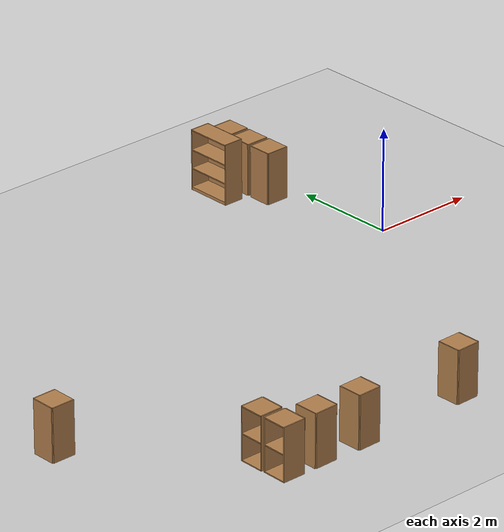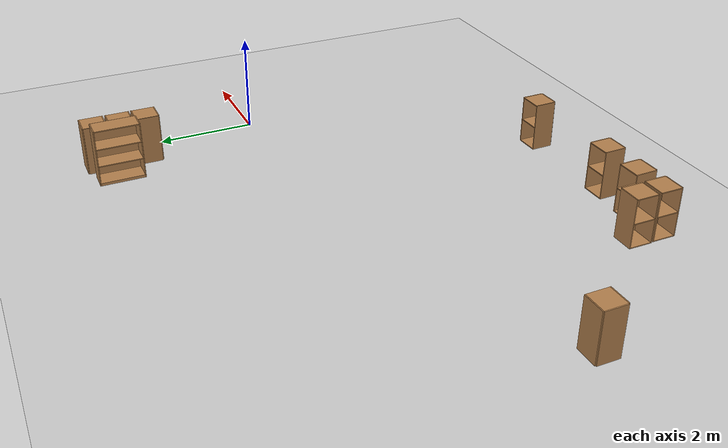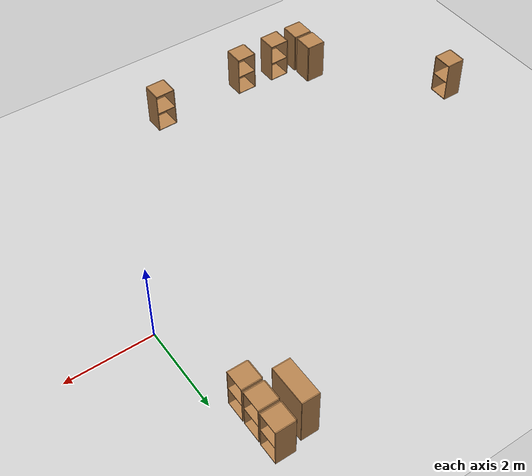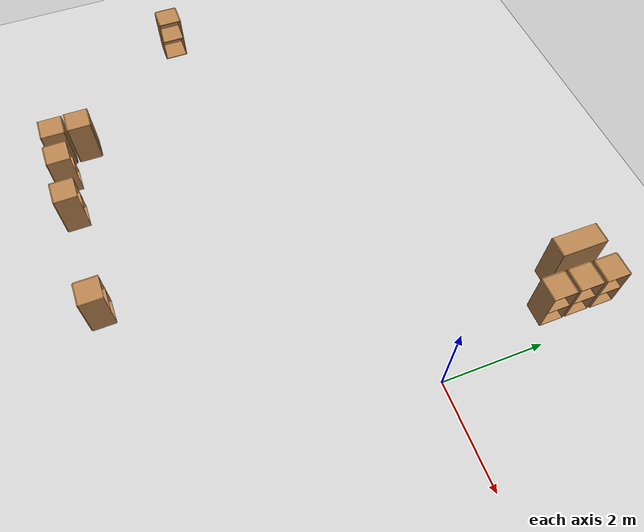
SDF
<sdf version="1.6">
 <world name="default">
  <model name="ground_plane">
   <static>1</static>
   <link name="link">
    <collision name="collision">
     <geometry><plane><normal>0 0 1</normal><size>100 100</size></plane></geometry>
     <surface>
      <contact><collide_bitmask>65535</collide_bitmask></contact>
      <friction><ode><mu>100</mu><mu2>50</mu2></ode></friction>
     </surface>
    </collision>
    <visual name="visual">
     <cast_shadows>0</cast_shadows>
     <geometry><plane><normal>0 0 1</normal><size>100 100</size></plane></geometry>
     <material>
      <script><uri>file://media/materials/scripts/gazebo.material</uri><name>Gazebo/Grey</name></script>
     </material>
    </visual>
   </link>
  </model>
  <model name="cabinet_clone">
   <static>1</static>
   <link name="cabinet_bottom_plate">
    <inertial>
     <pose>0 0 -1 0 -0 0</pose>
     <inertia><ixx>2.05</ixx><ixy>0</ixy><ixz>0</ixz><iyy>2.05</iyy><iyz>0</iyz><izz>2.05</izz></inertia>
     <mass>25</mass>
    </inertial>
    <collision name="cabinet_bottom_plate_geom">
     <pose>0 0 0.01 0 -0 0</pose>
     <geometry><box><size>0.45 0.45 0.02</size></box></geometry>
    </collision>
    <visual name="cabinet_bottom_plate_geom_visual">
     <pose>0 0 0.01 0 -0 0</pose>
     <geometry><box><size>0.45 0.45 0.02</size></box></geometry>
     <material>
      <script><uri>file://media/materials/scripts/gazebo.material</uri><name>Gazebo/Wood</name></script>
     </material>
    </visual>
    <collision name="cabinet_bottom_plate_geom_cabinet_back_plate">
     <pose>0.235 0 0.51 0 -0 0</pose>
     <geometry><box><size>0.02 0.45 1.02</size></box></geometry>
    </collision>
    <visual name="cabinet_bottom_plate_geom_cabinet_back_plate_visual">
     <pose>0.235 0 0.51 0 -0 0</pose>
     <geometry><box><size>0.02 0.45 1.02</size></box></geometry>
     <material>
      <script><uri>file://media/materials/scripts/gazebo.material</uri><name>Gazebo/Wood</name></script>
     </material>
    </visual>
    <collision name="cabinet_bottom_plate_geom_cabinet_left_plate">
     <pose>0 0.235 0.51 0 -0 0</pose>
     <geometry><box><size>0.45 0.02 1.02</size></box></geometry>
    </collision>
    <visual name="cabinet_bottom_plate_geom_cabinet_left_plate_visual">
     <pose>0 0.235 0.51 0 -0 0</pose>
     <geometry><box><size>0.45 0.02 1.02</size></box></geometry>
     <material>
      <script><uri>file://media/materials/scripts/gazebo.material</uri><name>Gazebo/Wood</name></script>
     </material>
    </visual>
    <collision name="cabinet_bottom_plate_geom_cabinet_middle_plate">
     <pose>0 0 0.51 0 -0 0</pose>
     <geometry><box><size>0.45 0.45 0.02</size></box></geometry>
    </collision>
    <visual name="cabinet_bottom_plate_geom_cabinet_middle_plate_visual">
     <pose>0 0 0.51 0 -0 0</pose>
     <geometry><box><size>0.45 0.45 0.02</size></box></geometry>
     <material>
      <script><uri>file://media/materials/scripts/gazebo.material</uri><name>Gazebo/Wood</name></script>
     </material>
    </visual>
    <collision name="cabinet_bottom_plate_geom_cabinet_right_plate">
     <pose>0 -0.235 0.51 0 -0 0</pose>
     <geometry><box><size>0.45 0.02 1.02</size></box></geometry>
    </collision>
    <visual name="cabinet_bottom_plate_geom_cabinet_right_plate_visual">
     <pose>0 -0.235 0.51 0 -0 0</pose>
     <geometry><box><size>0.45 0.02 1.02</size></box></geometry>
     <material>
      <script><uri>file://media/materials/scripts/gazebo.material</uri><name>Gazebo/Wood</name></script>
     </material>
    </visual>
    <collision name="cabinet_bottom_plate_geom_cabinet_top_plate">
     <pose>0 0 1.01 0 -0 0</pose>
     <geometry><box><size>0.45 0.45 0.02</size></box></geometry>
    </collision>
    <visual name="cabinet_bottom_plate_geom_cabinet_top_plate_visual">
     <pose>0 0 1.01 0 -0 0</pose>
     <geometry><box><size>0.45 0.45 0.02</size></box></geometry>
     <material>
      <script><uri>file://media/materials/scripts/gazebo.material</uri><name>Gazebo/Wood</name></script>
     </material>
    </visual>
   </link>
   <pose>-0.559027 2.39605 0 0 -0 3.1415</pose>
  </model>
  <model name="cabinet_clone_0">
   <static>1</static>
   <link name="cabinet_bottom_plate">
    <inertial>
     <pose>0 0 -1 0 -0 0</pose>
     <inertia><ixx>2.05</ixx><ixy>0</ixy><ixz>0</ixz><iyy>2.05</iyy><iyz>0</iyz><izz>2.05</izz></inertia>
     <mass>25</mass>
    </inertial>
    <collision name="cabinet_bottom_plate_geom">
     <pose>0 0 0.01 0 -0 0</pose>
     <geometry><box><size>0.45 0.45 0.02</size></box></geometry>
    </collision>
    <visual name="cabinet_bottom_plate_geom_visual">
     <pose>0 0 0.01 0 -0 0</pose>
     <geometry><box><size>0.45 0.45 0.02</size></box></geometry>
     <material>
      <script><uri>file://media/materials/scripts/gazebo.material</uri><name>Gazebo/Wood</name></script>
     </material>
    </visual>
    <collision name="cabinet_bottom_plate_geom_cabinet_back_plate">
     <pose>0.235 0 0.51 0 -0 0</pose>
     <geometry><box><size>0.02 0.45 1.02</size></box></geometry>
    </collision>
    <visual name="cabinet_bottom_plate_geom_cabinet_back_plate_visual">
     <pose>0.235 0 0.51 0 -0 0</pose>
     <geometry><box><size>0.02 0.45 1.02</size></box></geometry>
     <material>
      <script><uri>file://media/materials/scripts/gazebo.material</uri><name>Gazebo/Wood</name></script>
     </material>
    </visual>
    <collision name="cabinet_bottom_plate_geom_cabinet_left_plate">
     <pose>0 0.235 0.51 0 -0 0</pose>
     <geometry><box><size>0.45 0.02 1.02</size></box></geometry>
    </collision>
    <visual name="cabinet_bottom_plate_geom_cabinet_left_plate_visual">
     <pose>0 0.235 0.51 0 -0 0</pose>
     <geometry><box><size>0.45 0.02 1.02</size></box></geometry>
     <material>
      <script><uri>file://media/materials/scripts/gazebo.material</uri><name>Gazebo/Wood</name></script>
     </material>
    </visual>
    <collision name="cabinet_bottom_plate_geom_cabinet_middle_plate">
     <pose>0 0 0.51 0 -0 0</pose>
     <geometry><box><size>0.45 0.45 0.02</size></box></geometry>
    </collision>
    <visual name="cabinet_bottom_plate_geom_cabinet_middle_plate_visual">
     <pose>0 0 0.51 0 -0 0</pose>
     <geometry><box><size>0.45 0.45 0.02</size></box></geometry>
     <material>
      <script><uri>file://media/materials/scripts/gazebo.material</uri><name>Gazebo/Wood</name></script>
     </material>
    </visual>
    <collision name="cabinet_bottom_plate_geom_cabinet_right_plate">
     <pose>0 -0.235 0.51 0 -0 0</pose>
     <geometry><box><size>0.45 0.02 1.02</size></box></geometry>
    </collision>
    <visual name="cabinet_bottom_plate_geom_cabinet_right_plate_visual">
     <pose>0 -0.235 0.51 0 -0 0</pose>
     <geometry><box><size>0.45 0.02 1.02</size></box></geometry>
     <material>
      <script><uri>file://media/materials/scripts/gazebo.material</uri><name>Gazebo/Wood</name></script>
     </material>
    </visual>
    <collision name="cabinet_bottom_plate_geom_cabinet_top_plate">
     <pose>0 0 1.01 0 -0 0</pose>
     <geometry><box><size>0.45 0.45 0.02</size></box></geometry>
    </collision>
    <visual name="cabinet_bottom_plate_geom_cabinet_top_plate_visual">
     <pose>0 0 1.01 0 -0 0</pose>
     <geometry><box><size>0.45 0.45 0.02</size></box></geometry>
     <material>
      <script><uri>file://media/materials/scripts/gazebo.material</uri><name>Gazebo/Wood</name></script>
     </material>
    </visual>
   </link>
   <pose>-0.558922 2.92629 0 0 -0 3.1415</pose>
  </model>
  <model name="cabinet_clone_1">
   <static>1</static>
   <link name="cabinet_bottom_plate">
    <inertial>
     <pose>0 0 -1 0 -0 0</pose>
     <inertia><ixx>2.05</ixx><ixy>0</ixy><ixz>0</ixz><iyy>2.05</iyy><iyz>0</iyz><izz>2.05</izz></inertia>
     <mass>25</mass>
    </inertial>
    <collision name="cabinet_bottom_plate_geom">
     <pose>0 0 0.01 0 -0 0</pose>
     <geometry><box><size>0.45 0.45 0.02</size></box></geometry>
    </collision>
    <visual name="cabinet_bottom_plate_geom_visual">
     <pose>0 0 0.01 0 -0 0</pose>
     <geometry><box><size>0.45 0.45 0.02</size></box></geometry>
     <material>
      <script><uri>file://media/materials/scripts/gazebo.material</uri><name>Gazebo/Wood</name></script>
     </material>
    </visual>
    <collision name="cabinet_bottom_plate_geom_cabinet_back_plate">
     <pose>0.235 0 0.51 0 -0 0</pose>
     <geometry><box><size>0.02 0.45 1.02</size></box></geometry>
    </collision>
    <visual name="cabinet_bottom_plate_geom_cabinet_back_plate_visual">
     <pose>0.235 0 0.51 0 -0 0</pose>
     <geometry><box><size>0.02 0.45 1.02</size></box></geometry>
     <material>
      <script><uri>file://media/materials/scripts/gazebo.material</uri><name>Gazebo/Wood</name></script>
     </material>
    </visual>
    <collision name="cabinet_bottom_plate_geom_cabinet_left_plate">
     <pose>0 0.235 0.51 0 -0 0</pose>
     <geometry><box><size>0.45 0.02 1.02</size></box></geometry>
    </collision>
    <visual name="cabinet_bottom_plate_geom_cabinet_left_plate_visual">
     <pose>0 0.235 0.51 0 -0 0</pose>
     <geometry><box><size>0.45 0.02 1.02</size></box></geometry>
     <material>
      <script><uri>file://media/materials/scripts/gazebo.material</uri><name>Gazebo/Wood</name></script>
     </material>
    </visual>
    <collision name="cabinet_bottom_plate_geom_cabinet_middle_plate">
     <pose>0 0 0.51 0 -0 0</pose>
     <geometry><box><size>0.45 0.45 0.02</size></box></geometry>
    </collision>
    <visual name="cabinet_bottom_plate_geom_cabinet_middle_plate_visual">
     <pose>0 0 0.51 0 -0 0</pose>
     <geometry><box><size>0.45 0.45 0.02</size></box></geometry>
     <material>
      <script><uri>file://media/materials/scripts/gazebo.material</uri><name>Gazebo/Wood</name></script>
     </material>
    </visual>
    <collision name="cabinet_bottom_plate_geom_cabinet_right_plate">
     <pose>0 -0.235 0.51 0 -0 0</pose>
     <geometry><box><size>0.45 0.02 1.02</size></box></geometry>
    </collision>
    <visual name="cabinet_bottom_plate_geom_cabinet_right_plate_visual">
     <pose>0 -0.235 0.51 0 -0 0</pose>
     <geometry><box><size>0.45 0.02 1.02</size></box></geometry>
     <material>
      <script><uri>file://media/materials/scripts/gazebo.material</uri><name>Gazebo/Wood</name></script>
     </material>
    </visual>
    <collision name="cabinet_bottom_plate_geom_cabinet_top_plate">
     <pose>0 0 1.01 0 -0 0</pose>
     <geometry><box><size>0.45 0.45 0.02</size></box></geometry>
    </collision>
    <visual name="cabinet_bottom_plate_geom_cabinet_top_plate_visual">
     <pose>0 0 1.01 0 -0 0</pose>
     <geometry><box><size>0.45 0.45 0.02</size></box></geometry>
     <material>
      <script><uri>file://media/materials/scripts/gazebo.material</uri><name>Gazebo/Wood</name></script>
     </material>
    </visual>
   </link>
   <pose>-0.550061 3.45827 0 0 -0 3.1415</pose>
  </model>
  <model name="bookshelf_0">
   <static>1</static>
   <link name="link">
    <inertial><mass>1</mass></inertial>
    <collision name="back">
     <pose>0 0.005 0.6 0 -0 0</pose>
     <geometry><box><size>0.9 0.01 1.2</size></box></geometry>
    </collision>
    <visual name="visual1">
     <pose>0 0.005 0.6 0 -0 0</pose>
     <geometry><box><size>0.9 0.01 1.2</size></box></geometry>
     <material>
      <script><uri>file://media/materials/scripts/gazebo.material</uri><name>Gazebo/Wood</name></script>
     </material>
    </visual>
    <collision name="left_side">
     <pose>0.45 -0.195 0.6 0 -0 0</pose>
     <geometry><box><size>0.02 0.4 1.2</size></box></geometry>
    </collision>
    <visual name="visual2">
     <pose>0.45 -0.195 0.6 0 -0 0</pose>
     <geometry><box><size>0.02 0.4 1.2</size></box></geometry>
     <material>
      <script><uri>file://media/materials/scripts/gazebo.material</uri><name>Gazebo/Wood</name></script>
     </material>
    </visual>
    <collision name="right_side">
     <pose>-0.45 -0.195 0.6 0 -0 0</pose>
     <geometry><box><size>0.02 0.4 1.2</size></box></geometry>
    </collision>
    <visual name="visual3">
     <pose>-0.45 -0.195 0.6 0 -0 0</pose>
     <geometry><box><size>0.02 0.4 1.2</size></box></geometry>
     <material>
      <script><uri>file://media/materials/scripts/gazebo.material</uri><name>Gazebo/Wood</name></script>
     </material>
    </visual>
    <collision name="bottom">
     <pose>0 -0.195 0.03 0 -0 0</pose>
     <geometry><box><size>0.88 0.4 0.06</size></box></geometry>
    </collision>
    <visual name="visual4">
     <pose>0 -0.195 0.03 0 -0 0</pose>
     <geometry><box><size>0.88 0.4 0.06</size></box></geometry>
     <material>
      <script><uri>file://media/materials/scripts/gazebo.material</uri><name>Gazebo/Wood</name></script>
     </material>
    </visual>
    <collision name="top">
     <pose>0 -0.195 1.19 0 -0 0</pose>
     <geometry><box><size>0.88 0.4 0.02</size></box></geometry>
    </collision>
    <visual name="visual5">
     <pose>0 -0.195 1.19 0 -0 0</pose>
     <geometry><box><size>0.88 0.4 0.02</size></box></geometry>
     <material>
      <script><uri>file://media/materials/scripts/gazebo.material</uri><name>Gazebo/Wood</name></script>
     </material>
    </visual>
    <collision name="low_shelf">
     <pose>0 -0.195 0.43 0 -0 0</pose>
     <geometry><box><size>0.88 0.4 0.02</size></box></geometry>
    </collision>
    <visual name="visual6">
     <pose>0 -0.195 0.43 0 -0 0</pose>
     <geometry><box><size>0.88 0.4 0.02</size></box></geometry>
     <material>
      <script><uri>file://media/materials/scripts/gazebo.material</uri><name>Gazebo/Wood</name></script>
     </material>
    </visual>
    <collision name="high_shelf">
     <pose>0 -0.195 0.8 0 -0 0</pose>
     <geometry><box><size>0.88 0.4 0.02</size></box></geometry>
    </collision>
    <visual name="visual7">
     <pose>0 -0.195 0.8 0 -0 0</pose>
     <geometry><box><size>0.88 0.4 0.02</size></box></geometry>
     <material>
      <script><uri>file://media/materials/scripts/gazebo.material</uri><name>Gazebo/Wood</name></script>
     </material>
    </visual>
   </link>
   <pose>-0.982099 3.12059 0 0 0 -1.5708</pose>
  </model>
  <model name="cabinet_clone_clone">
   <static>1</static>
   <link name="cabinet_bottom_plate">
    <inertial>
     <pose>0 0 -1 0 -0 0</pose>
     <inertia><ixx>2.05</ixx><ixy>0</ixy><ixz>0</ixz><iyy>2.05</iyy><iyz>0</iyz><izz>2.05</izz></inertia>
     <mass>25</mass>
    </inertial>
    <collision name="cabinet_bottom_plate_geom">
     <pose>0 0 0.01 0 -0 0</pose>
     <geometry><box><size>0.45 0.45 0.02</size></box></geometry>
    </collision>
    <visual name="cabinet_bottom_plate_geom_visual">
     <pose>0 0 0.01 0 -0 0</pose>
     <geometry><box><size>0.45 0.45 0.02</size></box></geometry>
     <material>
      <script><uri>file://media/materials/scripts/gazebo.material</uri><name>Gazebo/Wood</name></script>
     </material>
    </visual>
    <collision name="cabinet_bottom_plate_geom_cabinet_back_plate">
     <pose>0.235 0 0.51 0 -0 0</pose>
     <geometry><box><size>0.02 0.45 1.02</size></box></geometry>
    </collision>
    <visual name="cabinet_bottom_plate_geom_cabinet_back_plate_visual">
     <pose>0.235 0 0.51 0 -0 0</pose>
     <geometry><box><size>0.02 0.45 1.02</size></box></geometry>
     <material>
      <script><uri>file://media/materials/scripts/gazebo.material</uri><name>Gazebo/Wood</name></script>
     </material>
    </visual>
    <collision name="cabinet_bottom_plate_geom_cabinet_left_plate">
     <pose>0 0.235 0.51 0 -0 0</pose>
     <geometry><box><size>0.45 0.02 1.02</size></box></geometry>
    </collision>
    <visual name="cabinet_bottom_plate_geom_cabinet_left_plate_visual">
     <pose>0 0.235 0.51 0 -0 0</pose>
     <geometry><box><size>0.45 0.02 1.02</size></box></geometry>
     <material>
      <script><uri>file://media/materials/scripts/gazebo.material</uri><name>Gazebo/Wood</name></script>
     </material>
    </visual>
    <collision name="cabinet_bottom_plate_geom_cabinet_middle_plate">
     <pose>0 0 0.51 0 -0 0</pose>
     <geometry><box><size>0.45 0.45 0.02</size></box></geometry>
    </collision>
    <visual name="cabinet_bottom_plate_geom_cabinet_middle_plate_visual">
     <pose>0 0 0.51 0 -0 0</pose>
     <geometry><box><size>0.45 0.45 0.02</size></box></geometry>
     <material>
      <script><uri>file://media/materials/scripts/gazebo.material</uri><name>Gazebo/Wood</name></script>
     </material>
    </visual>
    <collision name="cabinet_bottom_plate_geom_cabinet_right_plate">
     <pose>0 -0.235 0.51 0 -0 0</pose>
     <geometry><box><size>0.45 0.02 1.02</size></box></geometry>
    </collision>
    <visual name="cabinet_bottom_plate_geom_cabinet_right_plate_visual">
     <pose>0 -0.235 0.51 0 -0 0</pose>
     <geometry><box><size>0.45 0.02 1.02</size></box></geometry>
     <material>
      <script><uri>file://media/materials/scripts/gazebo.material</uri><name>Gazebo/Wood</name></script>
     </material>
    </visual>
    <collision name="cabinet_bottom_plate_geom_cabinet_top_plate">
     <pose>0 0 1.01 0 -0 0</pose>
     <geometry><box><size>0.45 0.45 0.02</size></box></geometry>
    </collision>
    <visual name="cabinet_bottom_plate_geom_cabinet_top_plate_visual">
     <pose>0 0 1.01 0 -0 0</pose>
     <geometry><box><size>0.45 0.45 0.02</size></box></geometry>
     <material>
      <script><uri>file://media/materials/scripts/gazebo.material</uri><name>Gazebo/Wood</name></script>
     </material>
    </visual>
   </link>
   <pose>-9.62196 -2.30495 0 0 -0 3.1415</pose>
  </model>
  <model name="cabinet_clone_clone_0">
   <static>1</static>
   <link name="cabinet_bottom_plate">
    <inertial>
     <pose>0 0 -1 0 -0 0</pose>
     <inertia><ixx>2.05</ixx><ixy>0</ixy><ixz>0</ixz><iyy>2.05</iyy><iyz>0</iyz><izz>2.05</izz></inertia>
     <mass>25</mass>
    </inertial>
    <collision name="cabinet_bottom_plate_geom">
     <pose>0 0 0.01 0 -0 0</pose>
     <geometry><box><size>0.45 0.45 0.02</size></box></geometry>
    </collision>
    <visual name="cabinet_bottom_plate_geom_visual">
     <pose>0 0 0.01 0 -0 0</pose>
     <geometry><box><size>0.45 0.45 0.02</size></box></geometry>
     <material>
      <script><uri>file://media/materials/scripts/gazebo.material</uri><name>Gazebo/Wood</name></script>
     </material>
    </visual>
    <collision name="cabinet_bottom_plate_geom_cabinet_back_plate">
     <pose>0.235 0 0.51 0 -0 0</pose>
     <geometry><box><size>0.02 0.45 1.02</size></box></geometry>
    </collision>
    <visual name="cabinet_bottom_plate_geom_cabinet_back_plate_visual">
     <pose>0.235 0 0.51 0 -0 0</pose>
     <geometry><box><size>0.02 0.45 1.02</size></box></geometry>
     <material>
      <script><uri>file://media/materials/scripts/gazebo.material</uri><name>Gazebo/Wood</name></script>
     </material>
    </visual>
    <collision name="cabinet_bottom_plate_geom_cabinet_left_plate">
     <pose>0 0.235 0.51 0 -0 0</pose>
     <geometry><box><size>0.45 0.02 1.02</size></box></geometry>
    </collision>
    <visual name="cabinet_bottom_plate_geom_cabinet_left_plate_visual">
     <pose>0 0.235 0.51 0 -0 0</pose>
     <geometry><box><size>0.45 0.02 1.02</size></box></geometry>
     <material>
      <script><uri>file://media/materials/scripts/gazebo.material</uri><name>Gazebo/Wood</name></script>
     </material>
    </visual>
    <collision name="cabinet_bottom_plate_geom_cabinet_middle_plate">
     <pose>0 0 0.51 0 -0 0</pose>
     <geometry><box><size>0.45 0.45 0.02</size></box></geometry>
    </collision>
    <visual name="cabinet_bottom_plate_geom_cabinet_middle_plate_visual">
     <pose>0 0 0.51 0 -0 0</pose>
     <geometry><box><size>0.45 0.45 0.02</size></box></geometry>
     <material>
      <script><uri>file://media/materials/scripts/gazebo.material</uri><name>Gazebo/Wood</name></script>
     </material>
    </visual>
    <collision name="cabinet_bottom_plate_geom_cabinet_right_plate">
     <pose>0 -0.235 0.51 0 -0 0</pose>
     <geometry><box><size>0.45 0.02 1.02</size></box></geometry>
    </collision>
    <visual name="cabinet_bottom_plate_geom_cabinet_right_plate_visual">
     <pose>0 -0.235 0.51 0 -0 0</pose>
     <geometry><box><size>0.45 0.02 1.02</size></box></geometry>
     <material>
      <script><uri>file://media/materials/scripts/gazebo.material</uri><name>Gazebo/Wood</name></script>
     </material>
    </visual>
    <collision name="cabinet_bottom_plate_geom_cabinet_top_plate">
     <pose>0 0 1.01 0 -0 0</pose>
     <geometry><box><size>0.45 0.45 0.02</size></box></geometry>
    </collision>
    <visual name="cabinet_bottom_plate_geom_cabinet_top_plate_visual">
     <pose>0 0 1.01 0 -0 0</pose>
     <geometry><box><size>0.45 0.45 0.02</size></box></geometry>
     <material>
      <script><uri>file://media/materials/scripts/gazebo.material</uri><name>Gazebo/Wood</name></script>
     </material>
    </visual>
   </link>
   <pose>-7.30602 -5.31161 0 0 0 -0.007029</pose>
  </model>
  <model name="cabinet_clone_clone_0_clone">
   <static>1</static>
   <link name="cabinet_bottom_plate">
    <inertial>
     <pose>0 0 -1 0 -0 0</pose>
     <inertia><ixx>2.05</ixx><ixy>0</ixy><ixz>0</ixz><iyy>2.05</iyy><iyz>0</iyz><izz>2.05</izz></inertia>
     <mass>25</mass>
    </inertial>
    <collision name="cabinet_bottom_plate_geom">
     <pose>0 0 0.01 0 -0 0</pose>
     <geometry><box><size>0.45 0.45 0.02</size></box></geometry>
    </collision>
    <visual name="cabinet_bottom_plate_geom_visual">
     <pose>0 0 0.01 0 -0 0</pose>
     <geometry><box><size>0.45 0.45 0.02</size></box></geometry>
     <material>
      <script><uri>file://media/materials/scripts/gazebo.material</uri><name>Gazebo/Wood</name></script>
     </material>
    </visual>
    <collision name="cabinet_bottom_plate_geom_cabinet_back_plate">
     <pose>0.235 0 0.51 0 -0 0</pose>
     <geometry><box><size>0.02 0.45 1.02</size></box></geometry>
    </collision>
    <visual name="cabinet_bottom_plate_geom_cabinet_back_plate_visual">
     <pose>0.235 0 0.51 0 -0 0</pose>
     <geometry><box><size>0.02 0.45 1.02</size></box></geometry>
     <material>
      <script><uri>file://media/materials/scripts/gazebo.material</uri><name>Gazebo/Wood</name></script>
     </material>
    </visual>
    <collision name="cabinet_bottom_plate_geom_cabinet_left_plate">
     <pose>0 0.235 0.51 0 -0 0</pose>
     <geometry><box><size>0.45 0.02 1.02</size></box></geometry>
    </collision>
    <visual name="cabinet_bottom_plate_geom_cabinet_left_plate_visual">
     <pose>0 0.235 0.51 0 -0 0</pose>
     <geometry><box><size>0.45 0.02 1.02</size></box></geometry>
     <material>
      <script><uri>file://media/materials/scripts/gazebo.material</uri><name>Gazebo/Wood</name></script>
     </material>
    </visual>
    <collision name="cabinet_bottom_plate_geom_cabinet_middle_plate">
     <pose>0 0 0.51 0 -0 0</pose>
     <geometry><box><size>0.45 0.45 0.02</size></box></geometry>
    </collision>
    <visual name="cabinet_bottom_plate_geom_cabinet_middle_plate_visual">
     <pose>0 0 0.51 0 -0 0</pose>
     <geometry><box><size>0.45 0.45 0.02</size></box></geometry>
     <material>
      <script><uri>file://media/materials/scripts/gazebo.material</uri><name>Gazebo/Wood</name></script>
     </material>
    </visual>
    <collision name="cabinet_bottom_plate_geom_cabinet_right_plate">
     <pose>0 -0.235 0.51 0 -0 0</pose>
     <geometry><box><size>0.45 0.02 1.02</size></box></geometry>
    </collision>
    <visual name="cabinet_bottom_plate_geom_cabinet_right_plate_visual">
     <pose>0 -0.235 0.51 0 -0 0</pose>
     <geometry><box><size>0.45 0.02 1.02</size></box></geometry>
     <material>
      <script><uri>file://media/materials/scripts/gazebo.material</uri><name>Gazebo/Wood</name></script>
     </material>
    </visual>
    <collision name="cabinet_bottom_plate_geom_cabinet_top_plate">
     <pose>0 0 1.01 0 -0 0</pose>
     <geometry><box><size>0.45 0.45 0.02</size></box></geometry>
    </collision>
    <visual name="cabinet_bottom_plate_geom_cabinet_top_plate_visual">
     <pose>0 0 1.01 0 -0 0</pose>
     <geometry><box><size>0.45 0.45 0.02</size></box></geometry>
     <material>
      <script><uri>file://media/materials/scripts/gazebo.material</uri><name>Gazebo/Wood</name></script>
     </material>
    </visual>
   </link>
   <pose>-7.31812 -4.78176 0 0 0 -0.007029</pose>
  </model>
  <model name="cabinet_clone_clone_0_clone_0">
   <static>1</static>
   <link name="cabinet_bottom_plate">
    <inertial>
     <pose>0 0 -1 0 -0 0</pose>
     <inertia><ixx>2.05</ixx><ixy>0</ixy><ixz>0</ixz><iyy>2.05</iyy><iyz>0</iyz><izz>2.05</izz></inertia>
     <mass>25</mass>
    </inertial>
    <collision name="cabinet_bottom_plate_geom">
     <pose>0 0 0.01 0 -0 0</pose>
     <geometry><box><size>0.45 0.45 0.02</size></box></geometry>
    </collision>
    <visual name="cabinet_bottom_plate_geom_visual">
     <pose>0 0 0.01 0 -0 0</pose>
     <geometry><box><size>0.45 0.45 0.02</size></box></geometry>
     <material>
      <script><uri>file://media/materials/scripts/gazebo.material</uri><name>Gazebo/Wood</name></script>
     </material>
    </visual>
    <collision name="cabinet_bottom_plate_geom_cabinet_back_plate">
     <pose>0.235 0 0.51 0 -0 0</pose>
     <geometry><box><size>0.02 0.45 1.02</size></box></geometry>
    </collision>
    <visual name="cabinet_bottom_plate_geom_cabinet_back_plate_visual">
     <pose>0.235 0 0.51 0 -0 0</pose>
     <geometry><box><size>0.02 0.45 1.02</size></box></geometry>
     <material>
      <script><uri>file://media/materials/scripts/gazebo.material</uri><name>Gazebo/Wood</name></script>
     </material>
    </visual>
    <collision name="cabinet_bottom_plate_geom_cabinet_left_plate">
     <pose>0 0.235 0.51 0 -0 0</pose>
     <geometry><box><size>0.45 0.02 1.02</size></box></geometry>
    </collision>
    <visual name="cabinet_bottom_plate_geom_cabinet_left_plate_visual">
     <pose>0 0.235 0.51 0 -0 0</pose>
     <geometry><box><size>0.45 0.02 1.02</size></box></geometry>
     <material>
      <script><uri>file://media/materials/scripts/gazebo.material</uri><name>Gazebo/Wood</name></script>
     </material>
    </visual>
    <collision name="cabinet_bottom_plate_geom_cabinet_middle_plate">
     <pose>0 0 0.51 0 -0 0</pose>
     <geometry><box><size>0.45 0.45 0.02</size></box></geometry>
    </collision>
    <visual name="cabinet_bottom_plate_geom_cabinet_middle_plate_visual">
     <pose>0 0 0.51 0 -0 0</pose>
     <geometry><box><size>0.45 0.45 0.02</size></box></geometry>
     <material>
      <script><uri>file://media/materials/scripts/gazebo.material</uri><name>Gazebo/Wood</name></script>
     </material>
    </visual>
    <collision name="cabinet_bottom_plate_geom_cabinet_right_plate">
     <pose>0 -0.235 0.51 0 -0 0</pose>
     <geometry><box><size>0.45 0.02 1.02</size></box></geometry>
    </collision>
    <visual name="cabinet_bottom_plate_geom_cabinet_right_plate_visual">
     <pose>0 -0.235 0.51 0 -0 0</pose>
     <geometry><box><size>0.45 0.02 1.02</size></box></geometry>
     <material>
      <script><uri>file://media/materials/scripts/gazebo.material</uri><name>Gazebo/Wood</name></script>
     </material>
    </visual>
    <collision name="cabinet_bottom_plate_geom_cabinet_top_plate">
     <pose>0 0 1.01 0 -0 0</pose>
     <geometry><box><size>0.45 0.45 0.02</size></box></geometry>
    </collision>
    <visual name="cabinet_bottom_plate_geom_cabinet_top_plate_visual">
     <pose>0 0 1.01 0 -0 0</pose>
     <geometry><box><size>0.45 0.45 0.02</size></box></geometry>
     <material>
      <script><uri>file://media/materials/scripts/gazebo.material</uri><name>Gazebo/Wood</name></script>
     </material>
    </visual>
   </link>
   <pose>-5.65906 -5.34796 0 0 0 -1.55724</pose>
  </model>
  <model name="cabinet_clone_clone_0_clone_0_clone">
   <static>1</static>
   <link name="cabinet_bottom_plate">
    <inertial>
     <pose>0 0 -1 0 -0 0</pose>
     <inertia><ixx>2.05</ixx><ixy>0</ixy><ixz>0</ixz><iyy>2.05</iyy><iyz>0</iyz><izz>2.05</izz></inertia>
     <mass>25</mass>
    </inertial>
    <collision name="cabinet_bottom_plate_geom">
     <pose>0 0 0.01 0 -0 0</pose>
     <geometry><box><size>0.45 0.45 0.02</size></box></geometry>
    </collision>
    <visual name="cabinet_bottom_plate_geom_visual">
     <pose>0 0 0.01 0 -0 0</pose>
     <geometry><box><size>0.45 0.45 0.02</size></box></geometry>
     <material>
      <script><uri>file://media/materials/scripts/gazebo.material</uri><name>Gazebo/Wood</name></script>
     </material>
    </visual>
    <collision name="cabinet_bottom_plate_geom_cabinet_back_plate">
     <pose>0.235 0 0.51 0 -0 0</pose>
     <geometry><box><size>0.02 0.45 1.02</size></box></geometry>
    </collision>
    <visual name="cabinet_bottom_plate_geom_cabinet_back_plate_visual">
     <pose>0.235 0 0.51 0 -0 0</pose>
     <geometry><box><size>0.02 0.45 1.02</size></box></geometry>
     <material>
      <script><uri>file://media/materials/scripts/gazebo.material</uri><name>Gazebo/Wood</name></script>
     </material>
    </visual>
    <collision name="cabinet_bottom_plate_geom_cabinet_left_plate">
     <pose>0 0.235 0.51 0 -0 0</pose>
     <geometry><box><size>0.45 0.02 1.02</size></box></geometry>
    </collision>
    <visual name="cabinet_bottom_plate_geom_cabinet_left_plate_visual">
     <pose>0 0.235 0.51 0 -0 0</pose>
     <geometry><box><size>0.45 0.02 1.02</size></box></geometry>
     <material>
      <script><uri>file://media/materials/scripts/gazebo.material</uri><name>Gazebo/Wood</name></script>
     </material>
    </visual>
    <collision name="cabinet_bottom_plate_geom_cabinet_middle_plate">
     <pose>0 0 0.51 0 -0 0</pose>
     <geometry><box><size>0.45 0.45 0.02</size></box></geometry>
    </collision>
    <visual name="cabinet_bottom_plate_geom_cabinet_middle_plate_visual">
     <pose>0 0 0.51 0 -0 0</pose>
     <geometry><box><size>0.45 0.45 0.02</size></box></geometry>
     <material>
      <script><uri>file://media/materials/scripts/gazebo.material</uri><name>Gazebo/Wood</name></script>
     </material>
    </visual>
    <collision name="cabinet_bottom_plate_geom_cabinet_right_plate">
     <pose>0 -0.235 0.51 0 -0 0</pose>
     <geometry><box><size>0.45 0.02 1.02</size></box></geometry>
    </collision>
    <visual name="cabinet_bottom_plate_geom_cabinet_right_plate_visual">
     <pose>0 -0.235 0.51 0 -0 0</pose>
     <geometry><box><size>0.45 0.02 1.02</size></box></geometry>
     <material>
      <script><uri>file://media/materials/scripts/gazebo.material</uri><name>Gazebo/Wood</name></script>
     </material>
    </visual>
    <collision name="cabinet_bottom_plate_geom_cabinet_top_plate">
     <pose>0 0 1.01 0 -0 0</pose>
     <geometry><box><size>0.45 0.45 0.02</size></box></geometry>
    </collision>
    <visual name="cabinet_bottom_plate_geom_cabinet_top_plate_visual">
     <pose>0 0 1.01 0 -0 0</pose>
     <geometry><box><size>0.45 0.45 0.02</size></box></geometry>
     <material>
      <script><uri>file://media/materials/scripts/gazebo.material</uri><name>Gazebo/Wood</name></script>
     </material>
    </visual>
   </link>
   <pose>-6.60313 -5.31813 0 0 0 -1.55724</pose>
  </model>
  <model name="cabinet_clone_clone_0_clone_0_clone_0">
   <static>1</static>
   <link name="cabinet_bottom_plate">
    <inertial>
     <pose>0 0 -1 0 -0 0</pose>
     <inertia><ixx>2.05</ixx><ixy>0</ixy><ixz>0</ixz><iyy>2.05</iyy><iyz>0</iyz><izz>2.05</izz></inertia>
     <mass>25</mass>
    </inertial>
    <collision name="cabinet_bottom_plate_geom">
     <pose>0 0 0.01 0 -0 0</pose>
     <geometry><box><size>0.45 0.45 0.02</size></box></geometry>
    </collision>
    <visual name="cabinet_bottom_plate_geom_visual">
     <pose>0 0 0.01 0 -0 0</pose>
     <geometry><box><size>0.45 0.45 0.02</size></box></geometry>
     <material>
      <script><uri>file://media/materials/scripts/gazebo.material</uri><name>Gazebo/Wood</name></script>
     </material>
    </visual>
    <collision name="cabinet_bottom_plate_geom_cabinet_back_plate">
     <pose>0.235 0 0.51 0 -0 0</pose>
     <geometry><box><size>0.02 0.45 1.02</size></box></geometry>
    </collision>
    <visual name="cabinet_bottom_plate_geom_cabinet_back_plate_visual">
     <pose>0.235 0 0.51 0 -0 0</pose>
     <geometry><box><size>0.02 0.45 1.02</size></box></geometry>
     <material>
      <script><uri>file://media/materials/scripts/gazebo.material</uri><name>Gazebo/Wood</name></script>
     </material>
    </visual>
    <collision name="cabinet_bottom_plate_geom_cabinet_left_plate">
     <pose>0 0.235 0.51 0 -0 0</pose>
     <geometry><box><size>0.45 0.02 1.02</size></box></geometry>
    </collision>
    <visual name="cabinet_bottom_plate_geom_cabinet_left_plate_visual">
     <pose>0 0.235 0.51 0 -0 0</pose>
     <geometry><box><size>0.45 0.02 1.02</size></box></geometry>
     <material>
      <script><uri>file://media/materials/scripts/gazebo.material</uri><name>Gazebo/Wood</name></script>
     </material>
    </visual>
    <collision name="cabinet_bottom_plate_geom_cabinet_middle_plate">
     <pose>0 0 0.51 0 -0 0</pose>
     <geometry><box><size>0.45 0.45 0.02</size></box></geometry>
    </collision>
    <visual name="cabinet_bottom_plate_geom_cabinet_middle_plate_visual">
     <pose>0 0 0.51 0 -0 0</pose>
     <geometry><box><size>0.45 0.45 0.02</size></box></geometry>
     <material>
      <script><uri>file://media/materials/scripts/gazebo.material</uri><name>Gazebo/Wood</name></script>
     </material>
    </visual>
    <collision name="cabinet_bottom_plate_geom_cabinet_right_plate">
     <pose>0 -0.235 0.51 0 -0 0</pose>
     <geometry><box><size>0.45 0.02 1.02</size></box></geometry>
    </collision>
    <visual name="cabinet_bottom_plate_geom_cabinet_right_plate_visual">
     <pose>0 -0.235 0.51 0 -0 0</pose>
     <geometry><box><size>0.45 0.02 1.02</size></box></geometry>
     <material>
      <script><uri>file://media/materials/scripts/gazebo.material</uri><name>Gazebo/Wood</name></script>
     </material>
    </visual>
    <collision name="cabinet_bottom_plate_geom_cabinet_top_plate">
     <pose>0 0 1.01 0 -0 0</pose>
     <geometry><box><size>0.45 0.45 0.02</size></box></geometry>
    </collision>
    <visual name="cabinet_bottom_plate_geom_cabinet_top_plate_visual">
     <pose>0 0 1.01 0 -0 0</pose>
     <geometry><box><size>0.45 0.45 0.02</size></box></geometry>
     <material>
      <script><uri>file://media/materials/scripts/gazebo.material</uri><name>Gazebo/Wood</name></script>
     </material>
    </visual>
   </link>
   <pose>-3.37408 -5.31914 0 0 0 -1.55724</pose>
  </model>
 </world>
</sdf>
